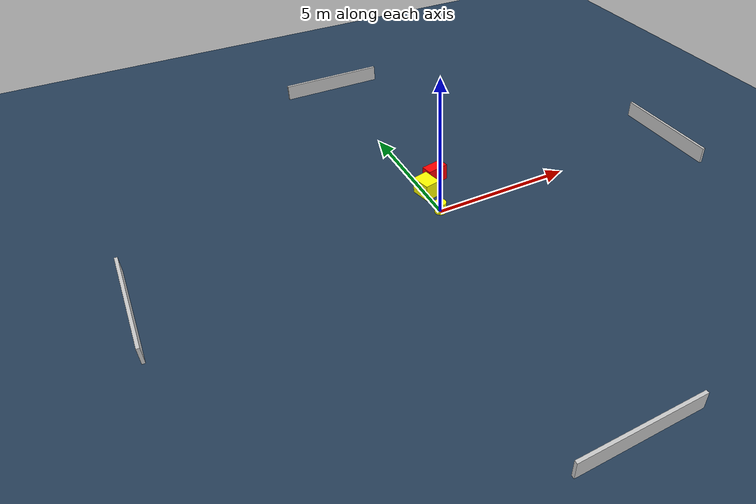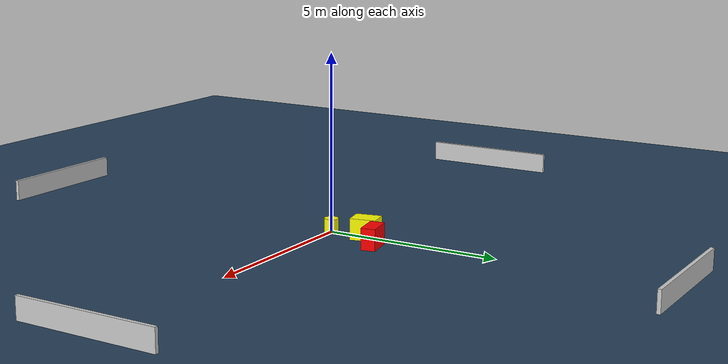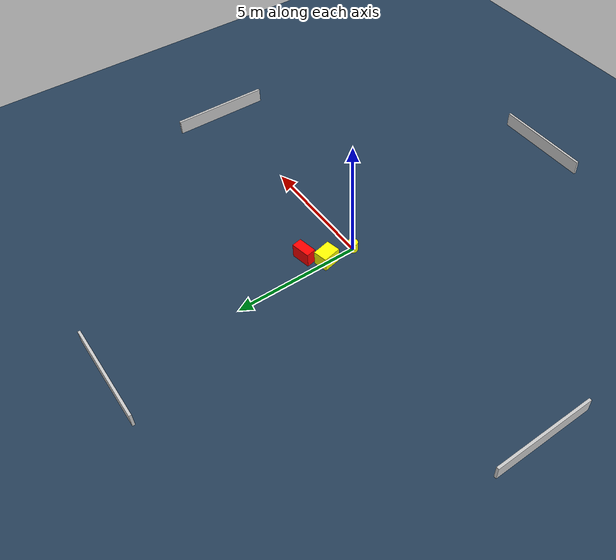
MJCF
<?xml version="1.0" ?>
<mujoco model="generated_environment">
  <option timestep="0.01" integrator="RK4" cone="elliptic"/>
  <default>
    <geom density="1"/>
  </default>
  <asset>
    <texture builtin="gradient" height="3072" name="skybox" rgb1="0.3 0.5 0.7" rgb2="0 0 0" type="skybox" width="512"/>
    <texture builtin="checker" height="300" name="groundplane" rgb1="0.2 0.3 0.4" rgb2="0.1 0.2 0.3" type="2d" width="300"/>
    <material name="groundplane" reflectance="0.2" texrepeat="5 5" texture="groundplane"/>
  </asset>
  <worldbody>
    <light dir="0 0 -1" directional="true" pos="0 0 1.5"/>
    <geom condim="3" friction="0.5 0.005 0.001" material="groundplane" name="floor" pos="0 0 0" size="0 0 0.05" type="plane"/>
    <body name="walls">
      <geom name="wall_1" condim="4" pos="-10.0 0.0 0.3" rgba="0.800000011920929 0.800000011920929 0.800000011920929 1.0" size="0.05 2.0 0.3" type="box"/>
      <geom name="wall_2" condim="4" pos="10.0 0.0 0.3" rgba="0.800000011920929 0.800000011920929 0.800000011920929 1.0" size="0.05 2.0 0.3" type="box"/>
      <geom name="wall_3" condim="4" pos="0.0 -10.0 0.3" rgba="0.800000011920929 0.800000011920929 0.800000011920929 1.0" size="2.0 0.05 0.3" type="box"/>
      <geom name="wall_4" condim="4" pos="0.0 10.0 0.3" rgba="0.800000011920929 0.800000011920929 0.800000011920929 1.0" size="2.0 0.05 0.3" type="box"/>
    </body>
    <body name="robot">
      <joint name="joint_x" type="slide" pos="0 0 0" axis="1 0 0"/>
      <joint name="joint_y" type="slide" pos="0 0 0" axis="0 1 0"/>
      <geom name="robot" type="cylinder" pos="0.0 0.0 0.2" size="0.2 0.2 0.0" mass="5.0" friction="1.0 0.005 0.0001" condim="4" rgba="1.0 1.0 0.0 1.0"/>
    </body>
    <body name="obstacle_1_movable">
      <geom name="obstacle_1_movable" condim="4" pos="0.06635574855597588 1.1454373285526347 0.3" euler="0 0 282.3449238624853" friction="0.0 0.005 0.001" rgba="1.0 1.0 0.0 1.0" size="0.3675053048716724 0.28992138544066365 0.3" type="box" mass="0.1"/>
      <joint type="free"/>
    </body>
    <body name="obstacle_2_static">
      <geom name="obstacle_2_static" condim="4" pos="0.7025728732092866 1.7322590627816166 0.3" euler="0 0 100.88698672270951" friction="0.0 0.005 0.001" rgba="1.0 0.0 0.0 1.0" size="0.20171817664139724 0.3918307154211599 0.3" type="box"/>
    </body>
  </worldbody>
  <actuator>
    <motor name="actuator_x" joint="joint_x" gear="1" ctrlrange="-1 1"/>
    <motor name="actuator_y" joint="joint_y" gear="1" ctrlrange="-1 1"/>
  </actuator>
</mujoco>
